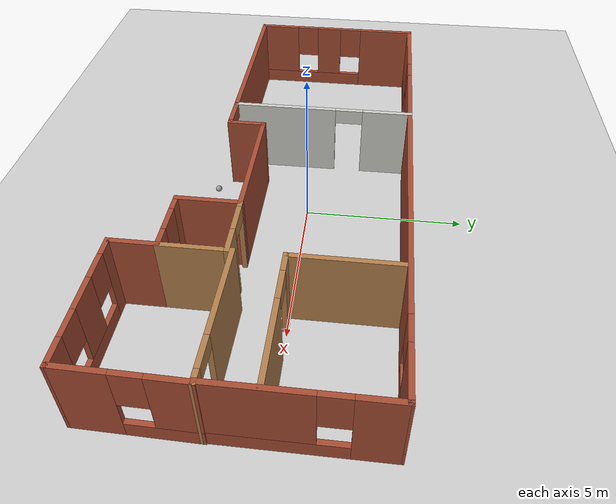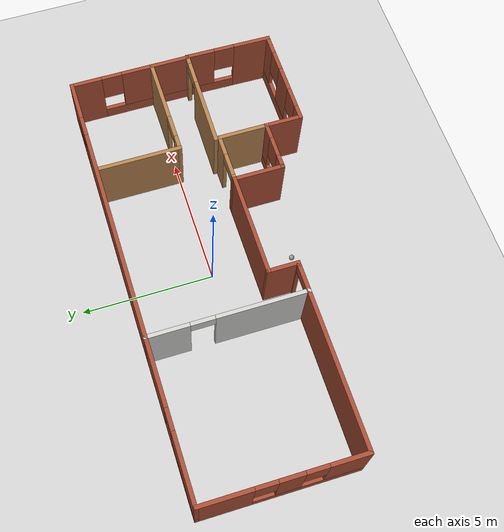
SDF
<sdf version="1.6">
 <world name="default">
  <model name="ground_plane">
   <static>1</static>
   <link name="link">
    <collision name="collision">
     <geometry><plane><normal>0 0 1</normal><size>100 100</size></plane></geometry>
     <surface><friction><ode><mu>100</mu><mu2>50</mu2></ode></friction></surface>
    </collision>
    <visual name="visual">
     <cast_shadows>0</cast_shadows>
     <geometry><plane><normal>0 0 1</normal><size>100 100</size></plane></geometry>
     <material>
      <script><uri>file://media/materials/scripts/gazebo.material</uri><name>Gazebo/Grey</name></script>
     </material>
    </visual>
   </link>
  </model>
  <model name="myhouse">
   <pose>-0.06085 -0.82016 0 0 -0 0</pose>
   <link name="Wall_0">
    <pose>-1.87765 -1.87448 0 0 -0 0</pose>
    <visual name="Wall_0_Visual_0">
     <pose>-0.555853 0 1.25 0 -0 0</pose>
     <geometry><box><size>0.138293 0.15 2.5</size></box></geometry>
     <material>
      <script><uri>file://media/materials/scripts/gazebo.material</uri><name>Gazebo/Bricks</name></script>
      <ambient>1 1 1 1</ambient>
     </material>
     <meta><layer>0</layer></meta>
    </visual>
    <collision name="Wall_0_Collision_0">
     <geometry><box><size>0.138293 0.15 2.5</size></box></geometry>
     <pose>-0.555853 0 1.25 0 -0 0</pose>
    </collision>
    <visual name="Wall_0_Visual_1">
     <pose>0.519147 0 1.25 0 -0 0</pose>
     <geometry><box><size>0.211707 0.15 2.5</size></box></geometry>
     <material>
      <script><uri>file://media/materials/scripts/gazebo.material</uri><name>Gazebo/Bricks</name></script>
      <ambient>1 1 1 1</ambient>
     </material>
     <meta><layer>0</layer></meta>
    </visual>
    <collision name="Wall_0_Collision_1">
     <geometry><box><size>0.211707 0.15 2.5</size></box></geometry>
     <pose>0.519147 0 1.25 0 -0 0</pose>
    </collision>
    <visual name="Wall_0_Visual_2">
     <pose>-0.036707 0 2.25 0 -0 0</pose>
     <geometry><box><size>0.9 0.15 0.5</size></box></geometry>
     <material>
      <script><uri>file://media/materials/scripts/gazebo.material</uri><name>Gazebo/Bricks</name></script>
      <ambient>1 1 1 1</ambient>
     </material>
     <meta><layer>0</layer></meta>
    </visual>
    <collision name="Wall_0_Collision_2">
     <geometry><box><size>0.9 0.15 0.5</size></box></geometry>
     <pose>-0.036707 0 2.25 0 -0 0</pose>
    </collision>
   </link>
   <link name="Wall_1">
    <collision name="Wall_1_Collision">
     <geometry><box><size>1.25 0.15 2.5</size></box></geometry>
     <pose>0 0 1.25 0 -0 0</pose>
    </collision>
    <visual name="Wall_1_Visual">
     <pose>0 0 1.25 0 -0 0</pose>
     <geometry><box><size>1.25 0.15 2.5</size></box></geometry>
     <material>
      <script><uri>file://media/materials/scripts/gazebo.material</uri><name>Gazebo/Bricks</name></script>
      <ambient>1 1 1 1</ambient>
     </material>
     <meta><layer>0</layer></meta>
    </visual>
    <pose>-1.32765 -1.32448 0 0 -0 1.5708</pose>
   </link>
   <link name="Wall_10">
    <pose>8.24939 -2.32652 0 0 -0 1.55439</pose>
    <visual name="Wall_10_Visual_0">
     <pose>-0.982609 0 1.25 0 -0 0</pose>
     <geometry><box><size>1.48115 0.15 2.5</size></box></geometry>
     <material>
      <script><uri>file://media/materials/scripts/gazebo.material</uri><name>Gazebo/Bricks</name></script>
      <ambient>1 1 1 1</ambient>
     </material>
     <meta><layer>0</layer></meta>
    </visual>
    <collision name="Wall_10_Collision_0">
     <geometry><box><size>1.48115 0.15 2.5</size></box></geometry>
     <pose>-0.982609 0 1.25 0 -0 0</pose>
    </collision>
    <visual name="Wall_10_Visual_1">
     <pose>0.740575 0 0.25 0 -0 0</pose>
     <geometry><box><size>1.96522 0.15 0.5</size></box></geometry>
     <material>
      <script><uri>file://media/materials/scripts/gazebo.material</uri><name>Gazebo/Bricks</name></script>
      <ambient>1 1 1 1</ambient>
     </material>
     <meta><layer>0</layer></meta>
    </visual>
    <collision name="Wall_10_Collision_1">
     <geometry><box><size>1.96522 0.15 0.5</size></box></geometry>
     <pose>0.740575 0 0.25 0 -0 0</pose>
    </collision>
    <visual name="Wall_10_Visual_2">
     <pose>1.14057 0 1.5 0 -0 0</pose>
     <geometry><box><size>1.16522 0.15 2</size></box></geometry>
     <material>
      <script><uri>file://media/materials/scripts/gazebo.material</uri><name>Gazebo/Bricks</name></script>
      <ambient>1 1 1 1</ambient>
     </material>
     <meta><layer>0</layer></meta>
    </visual>
    <collision name="Wall_10_Collision_2">
     <geometry><box><size>1.16522 0.15 2</size></box></geometry>
     <pose>1.14057 0 1.5 0 -0 0</pose>
    </collision>
    <visual name="Wall_10_Visual_3">
     <pose>0.157966 0 1.9 0 -0 0</pose>
     <geometry><box><size>0.8 0.15 1.2</size></box></geometry>
     <material>
      <script><uri>file://media/materials/scripts/gazebo.material</uri><name>Gazebo/Bricks</name></script>
      <ambient>1 1 1 1</ambient>
     </material>
     <meta><layer>0</layer></meta>
    </visual>
    <collision name="Wall_10_Collision_3">
     <geometry><box><size>0.8 0.15 1.2</size></box></geometry>
     <pose>0.157966 0 1.9 0 -0 0</pose>
    </collision>
   </link>
   <link name="Wall_12">
    <pose>6.32439 -0.651522 0 0 0 -0.01385</pose>
    <visual name="Wall_12_Visual_0">
     <pose>-0.654543 0 1.25 0 -0 0</pose>
     <geometry><box><size>2.74536 0.15 2.5</size></box></geometry>
     <material>
      <script><uri>file://media/materials/scripts/gazebo.material</uri><name>Gazebo/Wood</name></script>
      <ambient>1 1 1 1</ambient>
     </material>
     <meta><layer>0</layer></meta>
    </visual>
    <collision name="Wall_12_Collision_0">
     <geometry><box><size>2.74536 0.15 2.5</size></box></geometry>
     <pose>-0.654543 0 1.25 0 -0 0</pose>
    </collision>
    <visual name="Wall_12_Visual_1">
     <pose>1.82268 0 1.25 0 -0 0</pose>
     <geometry><box><size>0.409086 0.15 2.5</size></box></geometry>
     <material>
      <script><uri>file://media/materials/scripts/gazebo.material</uri><name>Gazebo/Wood</name></script>
      <ambient>1 1 1 1</ambient>
     </material>
     <meta><layer>0</layer></meta>
    </visual>
    <collision name="Wall_12_Collision_1">
     <geometry><box><size>0.409086 0.15 2.5</size></box></geometry>
     <pose>1.82268 0 1.25 0 -0 0</pose>
    </collision>
    <visual name="Wall_12_Visual_2">
     <pose>1.16814 0 2.25 0 -0 0</pose>
     <geometry><box><size>0.9 0.15 0.5</size></box></geometry>
     <material>
      <script><uri>file://media/materials/scripts/gazebo.material</uri><name>Gazebo/Wood</name></script>
      <ambient>1 1 1 1</ambient>
     </material>
     <meta><layer>0</layer></meta>
    </visual>
    <collision name="Wall_12_Collision_2">
     <geometry><box><size>0.9 0.15 0.5</size></box></geometry>
     <pose>1.16814 0 2.25 0 -0 0</pose>
    </collision>
   </link>
   <link name="Wall_14">
    <pose>-2.42765 1.05052 0 0 -0 1.5708</pose>
    <visual name="Wall_14_Visual_0">
     <pose>-1.27529 0 1.25 0 -0 0</pose>
     <geometry><box><size>3.44943 0.15 2.5</size></box></geometry>
     <material>
      <script><uri>file://media/materials/scripts/gazebo.material</uri><name>Gazebo/CeilingTiled</name></script>
      <ambient>1 1 0 1</ambient>
     </material>
     <meta><layer>0</layer></meta>
    </visual>
    <collision name="Wall_14_Collision_0">
     <geometry><box><size>3.44943 0.15 2.5</size></box></geometry>
     <pose>-1.27529 0 1.25 0 -0 0</pose>
    </collision>
    <visual name="Wall_14_Visual_1">
     <pose>2.17471 0 1.25 0 -0 0</pose>
     <geometry><box><size>1.65057 0.15 2.5</size></box></geometry>
     <material>
      <script><uri>file://media/materials/scripts/gazebo.material</uri><name>Gazebo/CeilingTiled</name></script>
      <ambient>1 1 0 1</ambient>
     </material>
     <meta><layer>0</layer></meta>
    </visual>
    <collision name="Wall_14_Collision_1">
     <geometry><box><size>1.65057 0.15 2.5</size></box></geometry>
     <pose>2.17471 0 1.25 0 -0 0</pose>
    </collision>
    <visual name="Wall_14_Visual_2">
     <pose>0.899425 0 2.25 0 -0 0</pose>
     <geometry><box><size>0.9 0.15 0.5</size></box></geometry>
     <material>
      <script><uri>file://media/materials/scripts/gazebo.material</uri><name>Gazebo/CeilingTiled</name></script>
      <ambient>1 1 0 1</ambient>
     </material>
     <meta><layer>0</layer></meta>
    </visual>
    <collision name="Wall_14_Collision_2">
     <geometry><box><size>0.9 0.15 0.5</size></box></geometry>
     <pose>0.899425 0 2.25 0 -0 0</pose>
    </collision>
   </link>
   <link name="Wall_15">
    <pose>-5.35265 3.97552 0 0 -0 3.14159</pose>
    <visual name="Wall_15_Visual_0">
     <pose>-1.69701 0 1.25 0 -0 0</pose>
     <geometry><box><size>2.60598 0.15 2.5</size></box></geometry>
     <material>
      <script><uri>file://media/materials/scripts/gazebo.material</uri><name>Gazebo/Bricks</name></script>
      <ambient>1 1 1 1</ambient>
     </material>
     <meta><layer>0</layer></meta>
    </visual>
    <collision name="Wall_15_Collision_0">
     <geometry><box><size>2.60598 0.15 2.5</size></box></geometry>
     <pose>-1.69701 0 1.25 0 -0 0</pose>
    </collision>
    <visual name="Wall_15_Visual_1">
     <pose>1.30299 0 0.25 0 -0 0</pose>
     <geometry><box><size>3.39402 0.15 0.5</size></box></geometry>
     <material>
      <script><uri>file://media/materials/scripts/gazebo.material</uri><name>Gazebo/Bricks</name></script>
      <ambient>1 1 1 1</ambient>
     </material>
     <meta><layer>0</layer></meta>
    </visual>
    <collision name="Wall_15_Collision_1">
     <geometry><box><size>3.39402 0.15 0.5</size></box></geometry>
     <pose>1.30299 0 0.25 0 -0 0</pose>
    </collision>
    <visual name="Wall_15_Visual_2">
     <pose>1.70299 0 1.5 0 -0 0</pose>
     <geometry><box><size>2.59402 0.15 2</size></box></geometry>
     <material>
      <script><uri>file://media/materials/scripts/gazebo.material</uri><name>Gazebo/Bricks</name></script>
      <ambient>1 1 1 1</ambient>
     </material>
     <meta><layer>0</layer></meta>
    </visual>
    <collision name="Wall_15_Collision_2">
     <geometry><box><size>2.59402 0.15 2</size></box></geometry>
     <pose>1.70299 0 1.5 0 -0 0</pose>
    </collision>
    <visual name="Wall_15_Visual_3">
     <pose>0.005982 0 1.9 0 -0 0</pose>
     <geometry><box><size>0.8 0.15 1.2</size></box></geometry>
     <material>
      <script><uri>file://media/materials/scripts/gazebo.material</uri><name>Gazebo/Bricks</name></script>
      <ambient>1 1 1 1</ambient>
     </material>
     <meta><layer>0</layer></meta>
    </visual>
    <collision name="Wall_15_Collision_3">
     <geometry><box><size>0.8 0.15 1.2</size></box></geometry>
     <pose>0.005982 0 1.9 0 -0 0</pose>
    </collision>
   </link>
   <link name="Wall_16">
    <pose>-8.27765 1.05052 0 0 0 -1.5708</pose>
    <visual name="Wall_16_Visual_0">
     <pose>-1.99021 0 1.25 0 -0 0</pose>
     <geometry><box><size>2.01957 0.15 2.5</size></box></geometry>
     <material>
      <script><uri>file://media/materials/scripts/gazebo.material</uri><name>Gazebo/Bricks</name></script>
      <ambient>1 1 1 1</ambient>
     </material>
     <meta><layer>0</layer></meta>
    </visual>
    <collision name="Wall_16_Collision_0">
     <geometry><box><size>2.01957 0.15 2.5</size></box></geometry>
     <pose>-1.99021 0 1.25 0 -0 0</pose>
    </collision>
    <visual name="Wall_16_Visual_1">
     <pose>1.00979 0 0.25 0 -0 0</pose>
     <geometry><box><size>3.98043 0.15 0.5</size></box></geometry>
     <material>
      <script><uri>file://media/materials/scripts/gazebo.material</uri><name>Gazebo/Bricks</name></script>
      <ambient>1 1 1 1</ambient>
     </material>
     <meta><layer>0</layer></meta>
    </visual>
    <collision name="Wall_16_Collision_1">
     <geometry><box><size>3.98043 0.15 0.5</size></box></geometry>
     <pose>1.00979 0 0.25 0 -0 0</pose>
    </collision>
    <visual name="Wall_16_Visual_2">
     <pose>0.277751 0 1.5 0 -0 0</pose>
     <geometry><box><size>0.916358 0.15 2</size></box></geometry>
     <material>
      <script><uri>file://media/materials/scripts/gazebo.material</uri><name>Gazebo/Bricks</name></script>
      <ambient>1 1 1 1</ambient>
     </material>
     <meta><layer>0</layer></meta>
    </visual>
    <collision name="Wall_16_Collision_2">
     <geometry><box><size>0.916358 0.15 2</size></box></geometry>
     <pose>0.277751 0 1.5 0 -0 0</pose>
    </collision>
    <visual name="Wall_16_Visual_3">
     <pose>2.26796 0 1.5 0 -0 0</pose>
     <geometry><box><size>1.46407 0.15 2</size></box></geometry>
     <material>
      <script><uri>file://media/materials/scripts/gazebo.material</uri><name>Gazebo/Bricks</name></script>
      <ambient>1 1 1 1</ambient>
     </material>
     <meta><layer>0</layer></meta>
    </visual>
    <collision name="Wall_16_Collision_3">
     <geometry><box><size>1.46407 0.15 2</size></box></geometry>
     <pose>2.26796 0 1.5 0 -0 0</pose>
    </collision>
    <visual name="Wall_16_Visual_4">
     <pose>-0.580428 0 1.9 0 -0 0</pose>
     <geometry><box><size>0.8 0.15 1.2</size></box></geometry>
     <material>
      <script><uri>file://media/materials/scripts/gazebo.material</uri><name>Gazebo/Bricks</name></script>
      <ambient>1 1 1 1</ambient>
     </material>
     <meta><layer>0</layer></meta>
    </visual>
    <collision name="Wall_16_Collision_4">
     <geometry><box><size>0.8 0.15 1.2</size></box></geometry>
     <pose>-0.580428 0 1.9 0 -0 0</pose>
    </collision>
    <visual name="Wall_16_Visual_5">
     <pose>1.13593 0 1.9 0 -0 0</pose>
     <geometry><box><size>0.8 0.15 1.2</size></box></geometry>
     <material>
      <script><uri>file://media/materials/scripts/gazebo.material</uri><name>Gazebo/Bricks</name></script>
      <ambient>1 1 1 1</ambient>
     </material>
     <meta><layer>0</layer></meta>
    </visual>
    <collision name="Wall_16_Collision_5">
     <geometry><box><size>0.8 0.15 1.2</size></box></geometry>
     <pose>1.13593 0 1.9 0 -0 0</pose>
    </collision>
   </link>
   <link name="Wall_17">
    <collision name="Wall_17_Collision">
     <geometry><box><size>6 0.15 2.5</size></box></geometry>
     <pose>0 0 1.25 0 -0 0</pose>
    </collision>
    <visual name="Wall_17_Visual">
     <pose>0 0 1.25 0 -0 0</pose>
     <geometry><box><size>6 0.15 2.5</size></box></geometry>
     <material>
      <script><uri>file://media/materials/scripts/gazebo.material</uri><name>Gazebo/Bricks</name></script>
      <ambient>1 1 1 1</ambient>
     </material>
     <meta><layer>0</layer></meta>
    </visual>
    <pose>-5.35265 -1.87448 0 0 -0 0</pose>
   </link>
   <link name="Wall_19">
    <pose>2.91087 3.962 0 0 0 -0.002532</pose>
    <visual name="Wall_19_Visual_0">
     <pose>-1.19531 0 1.25 0 -0 0</pose>
     <geometry><box><size>8.43646 0.15 2.5</size></box></geometry>
     <material>
      <script><uri>file://media/materials/scripts/gazebo.material</uri><name>Gazebo/Bricks</name></script>
      <ambient>1 1 1 1</ambient>
     </material>
     <meta><layer>0</layer></meta>
    </visual>
    <collision name="Wall_19_Collision_0">
     <geometry><box><size>8.43646 0.15 2.5</size></box></geometry>
     <pose>-1.19531 0 1.25 0 -0 0</pose>
    </collision>
    <visual name="Wall_19_Visual_1">
     <pose>4.21823 0 0.25 0 -0 0</pose>
     <geometry><box><size>2.39061 0.15 0.5</size></box></geometry>
     <material>
      <script><uri>file://media/materials/scripts/gazebo.material</uri><name>Gazebo/Bricks</name></script>
      <ambient>1 1 1 1</ambient>
     </material>
     <meta><layer>0</layer></meta>
    </visual>
    <collision name="Wall_19_Collision_1">
     <geometry><box><size>2.39061 0.15 0.5</size></box></geometry>
     <pose>4.21823 0 0.25 0 -0 0</pose>
    </collision>
    <visual name="Wall_19_Visual_2">
     <pose>4.61823 0 1.5 0 -0 0</pose>
     <geometry><box><size>1.59061 0.15 2</size></box></geometry>
     <material>
      <script><uri>file://media/materials/scripts/gazebo.material</uri><name>Gazebo/Bricks</name></script>
      <ambient>1 1 1 1</ambient>
     </material>
     <meta><layer>0</layer></meta>
    </visual>
    <collision name="Wall_19_Collision_2">
     <geometry><box><size>1.59061 0.15 2</size></box></geometry>
     <pose>4.61823 0 1.5 0 -0 0</pose>
    </collision>
    <visual name="Wall_19_Visual_3">
     <pose>3.42292 0 1.9 0 -0 0</pose>
     <geometry><box><size>0.8 0.15 1.2</size></box></geometry>
     <material>
      <script><uri>file://media/materials/scripts/gazebo.material</uri><name>Gazebo/Bricks</name></script>
      <ambient>1 1 1 1</ambient>
     </material>
     <meta><layer>0</layer></meta>
    </visual>
    <collision name="Wall_19_Collision_3">
     <geometry><box><size>0.8 0.15 1.2</size></box></geometry>
     <pose>3.42292 0 1.9 0 -0 0</pose>
    </collision>
   </link>
   <link name="Wall_2">
    <collision name="Wall_2_Collision">
     <geometry><box><size>4 0.15 2.5</size></box></geometry>
     <pose>0 0 1.25 0 -0 0</pose>
    </collision>
    <visual name="Wall_2_Visual">
     <pose>0 0 1.25 0 -0 0</pose>
     <geometry><box><size>4 0.15 2.5</size></box></geometry>
     <material>
      <script><uri>file://media/materials/scripts/gazebo.material</uri><name>Gazebo/Bricks</name></script>
      <ambient>1 1 1 1</ambient>
     </material>
     <meta><layer>0</layer></meta>
    </visual>
    <pose>0.597353 -0.774485 0 0 -0 0</pose>
   </link>
   <link name="Wall_21">
    <pose>8.24939 1.64848 0 0 0 -1.5708</pose>
    <visual name="Wall_21_Visual_0">
     <pose>-1.75419 0 1.25 0 -0 0</pose>
     <geometry><box><size>1.24163 0.15 2.5</size></box></geometry>
     <material>
      <script><uri>file://media/materials/scripts/gazebo.material</uri><name>Gazebo/Bricks</name></script>
      <ambient>1 1 1 1</ambient>
     </material>
     <meta><layer>0</layer></meta>
    </visual>
    <collision name="Wall_21_Collision_0">
     <geometry><box><size>1.24163 0.15 2.5</size></box></geometry>
     <pose>-1.75419 0 1.25 0 -0 0</pose>
    </collision>
    <visual name="Wall_21_Visual_1">
     <pose>0.620814 0 0.25 0 -0 0</pose>
     <geometry><box><size>3.50837 0.15 0.5</size></box></geometry>
     <material>
      <script><uri>file://media/materials/scripts/gazebo.material</uri><name>Gazebo/Bricks</name></script>
      <ambient>1 1 1 1</ambient>
     </material>
     <meta><layer>0</layer></meta>
    </visual>
    <collision name="Wall_21_Collision_1">
     <geometry><box><size>3.50837 0.15 0.5</size></box></geometry>
     <pose>0.620814 0 0.25 0 -0 0</pose>
    </collision>
    <visual name="Wall_21_Visual_2">
     <pose>1.02081 0 1.5 0 -0 0</pose>
     <geometry><box><size>2.70837 0.15 2</size></box></geometry>
     <material>
      <script><uri>file://media/materials/scripts/gazebo.material</uri><name>Gazebo/Bricks</name></script>
      <ambient>1 1 1 1</ambient>
     </material>
     <meta><layer>0</layer></meta>
    </visual>
    <collision name="Wall_21_Collision_2">
     <geometry><box><size>2.70837 0.15 2</size></box></geometry>
     <pose>1.02081 0 1.5 0 -0 0</pose>
    </collision>
    <visual name="Wall_21_Visual_3">
     <pose>-0.733373 0 1.9 0 -0 0</pose>
     <geometry><box><size>0.8 0.15 1.2</size></box></geometry>
     <material>
      <script><uri>file://media/materials/scripts/gazebo.material</uri><name>Gazebo/Bricks</name></script>
      <ambient>1 1 1 1</ambient>
     </material>
     <meta><layer>0</layer></meta>
    </visual>
    <collision name="Wall_21_Collision_3">
     <geometry><box><size>0.8 0.15 1.2</size></box></geometry>
     <pose>-0.733373 0 1.9 0 -0 0</pose>
    </collision>
   </link>
   <link name="Wall_23">
    <pose>6.30421 0.772765 0 0 -0 3.14159</pose>
    <visual name="Wall_23_Visual_0">
     <pose>-0.757202 0 1.25 0 -0 0</pose>
     <geometry><box><size>2.4856 0.15 2.5</size></box></geometry>
     <material>
      <script><uri>file://media/materials/scripts/gazebo.material</uri><name>Gazebo/Wood</name></script>
      <ambient>1 1 1 1</ambient>
     </material>
     <meta><layer>0</layer></meta>
    </visual>
    <collision name="Wall_23_Collision_0">
     <geometry><box><size>2.4856 0.15 2.5</size></box></geometry>
     <pose>-0.757202 0 1.25 0 -0 0</pose>
    </collision>
    <visual name="Wall_23_Visual_1">
     <pose>1.6928 0 1.25 0 -0 0</pose>
     <geometry><box><size>0.614403 0.15 2.5</size></box></geometry>
     <material>
      <script><uri>file://media/materials/scripts/gazebo.material</uri><name>Gazebo/Wood</name></script>
      <ambient>1 1 1 1</ambient>
     </material>
     <meta><layer>0</layer></meta>
    </visual>
    <collision name="Wall_23_Collision_1">
     <geometry><box><size>0.614403 0.15 2.5</size></box></geometry>
     <pose>1.6928 0 1.25 0 -0 0</pose>
    </collision>
    <visual name="Wall_23_Visual_2">
     <pose>0.935597 0 2.25 0 -0 0</pose>
     <geometry><box><size>0.9 0.15 0.5</size></box></geometry>
     <material>
      <script><uri>file://media/materials/scripts/gazebo.material</uri><name>Gazebo/Wood</name></script>
      <ambient>1 1 1 1</ambient>
     </material>
     <meta><layer>0</layer></meta>
    </visual>
    <collision name="Wall_23_Collision_2">
     <geometry><box><size>0.9 0.15 0.5</size></box></geometry>
     <pose>0.935597 0 2.25 0 -0 0</pose>
    </collision>
   </link>
   <link name="Wall_24">
    <collision name="Wall_24_Collision">
     <geometry><box><size>3.25 0.15 2.5</size></box></geometry>
     <pose>0 0 1.25 0 -0 0</pose>
    </collision>
    <visual name="Wall_24_Visual">
     <pose>0 0 1.25 0 -0 0</pose>
     <geometry><box><size>3.25 0.15 2.5</size></box></geometry>
     <material>
      <script><uri>file://media/materials/scripts/gazebo.material</uri><name>Gazebo/Wood</name></script>
      <ambient>0.921569 0.807843 0.615686 1</ambient>
     </material>
     <meta><layer>0</layer></meta>
    </visual>
    <pose>4.37921 2.32276 0 0 -0 1.5708</pose>
   </link>
   <link name="Wall_3">
    <collision name="Wall_3_Collision">
     <geometry><box><size>2 0.15 2.5</size></box></geometry>
     <pose>0 0 1.25 0 -0 0</pose>
    </collision>
    <visual name="Wall_3_Visual">
     <pose>0 0 1.25 0 -0 0</pose>
     <geometry><box><size>2 0.15 2.5</size></box></geometry>
     <material>
      <script><uri>file://media/materials/scripts/gazebo.material</uri><name>Gazebo/Bricks</name></script>
      <ambient>1 1 1 1</ambient>
     </material>
     <meta><layer>0</layer></meta>
    </visual>
    <pose>2.52235 -1.69948 0 0 0 -1.5708</pose>
   </link>
   <link name="Wall_4">
    <pose>3.44735 -2.62448 0 0 -0 0</pose>
    <visual name="Wall_4_Visual_0">
     <pose>-0.723076 0 1.25 0 -0 0</pose>
     <geometry><box><size>0.553849 0.15 2.5</size></box></geometry>
     <material>
      <script><uri>file://media/materials/scripts/gazebo.material</uri><name>Gazebo/Bricks</name></script>
      <ambient>1 1 1 1</ambient>
     </material>
     <meta><layer>0</layer></meta>
    </visual>
    <collision name="Wall_4_Collision_0">
     <geometry><box><size>0.553849 0.15 2.5</size></box></geometry>
     <pose>-0.723076 0 1.25 0 -0 0</pose>
    </collision>
    <visual name="Wall_4_Visual_1">
     <pose>0.276924 0 0.25 0 -0 0</pose>
     <geometry><box><size>1.44615 0.15 0.5</size></box></geometry>
     <material>
      <script><uri>file://media/materials/scripts/gazebo.material</uri><name>Gazebo/Bricks</name></script>
      <ambient>1 1 1 1</ambient>
     </material>
     <meta><layer>0</layer></meta>
    </visual>
    <collision name="Wall_4_Collision_1">
     <geometry><box><size>1.44615 0.15 0.5</size></box></geometry>
     <pose>0.276924 0 0.25 0 -0 0</pose>
    </collision>
    <visual name="Wall_4_Visual_2">
     <pose>0.676924 0 1.5 0 -0 0</pose>
     <geometry><box><size>0.646151 0.15 2</size></box></geometry>
     <material>
      <script><uri>file://media/materials/scripts/gazebo.material</uri><name>Gazebo/Bricks</name></script>
      <ambient>1 1 1 1</ambient>
     </material>
     <meta><layer>0</layer></meta>
    </visual>
    <collision name="Wall_4_Collision_2">
     <geometry><box><size>0.646151 0.15 2</size></box></geometry>
     <pose>0.676924 0 1.5 0 -0 0</pose>
    </collision>
    <visual name="Wall_4_Visual_3">
     <pose>-0.046151 0 1.9 0 -0 0</pose>
     <geometry><box><size>0.8 0.15 1.2</size></box></geometry>
     <material>
      <script><uri>file://media/materials/scripts/gazebo.material</uri><name>Gazebo/Bricks</name></script>
      <ambient>1 1 1 1</ambient>
     </material>
     <meta><layer>0</layer></meta>
    </visual>
    <collision name="Wall_4_Collision_3">
     <geometry><box><size>0.8 0.15 1.2</size></box></geometry>
     <pose>-0.046151 0 1.9 0 -0 0</pose>
    </collision>
   </link>
   <link name="Wall_5">
    <collision name="Wall_5_Collision">
     <geometry><box><size>2 0.15 2.5</size></box></geometry>
     <pose>0 0 1.25 0 -0 0</pose>
    </collision>
    <visual name="Wall_5_Visual">
     <pose>0 0 1.25 0 -0 0</pose>
     <geometry><box><size>2 0.15 2.5</size></box></geometry>
     <material>
      <script><uri>file://media/materials/scripts/gazebo.material</uri><name>Gazebo/Wood</name></script>
      <ambient>1 1 1 1</ambient>
     </material>
     <meta><layer>0</layer></meta>
    </visual>
    <pose>4.37235 -1.69948 0 0 -0 1.5708</pose>
   </link>
   <link name="Wall_6">
    <pose>3.44735 -0.774485 0 0 -0 3.14159</pose>
    <visual name="Wall_6_Visual_0">
     <pose>-0.577975 0 1.25 0 -0 0</pose>
     <geometry><box><size>0.84405 0.15 2.5</size></box></geometry>
     <material>
      <script><uri>file://media/materials/scripts/gazebo.material</uri><name>Gazebo/Wood</name></script>
      <ambient>0.435294 0.796078 0.67451 1</ambient>
     </material>
     <meta><layer>0</layer></meta>
    </visual>
    <collision name="Wall_6_Collision_0">
     <geometry><box><size>0.84405 0.15 2.5</size></box></geometry>
     <pose>-0.577975 0 1.25 0 -0 0</pose>
    </collision>
    <visual name="Wall_6_Visual_1">
     <pose>0.872025 0 1.25 0 -0 0</pose>
     <geometry><box><size>0.25595 0.15 2.5</size></box></geometry>
     <material>
      <script><uri>file://media/materials/scripts/gazebo.material</uri><name>Gazebo/Wood</name></script>
      <ambient>0.435294 0.796078 0.67451 1</ambient>
     </material>
     <meta><layer>0</layer></meta>
    </visual>
    <collision name="Wall_6_Collision_1">
     <geometry><box><size>0.25595 0.15 2.5</size></box></geometry>
     <pose>0.872025 0 1.25 0 -0 0</pose>
    </collision>
    <visual name="Wall_6_Visual_2">
     <pose>0.29405 0 2.25 0 -0 0</pose>
     <geometry><box><size>0.9 0.15 0.5</size></box></geometry>
     <material>
      <script><uri>file://media/materials/scripts/gazebo.material</uri><name>Gazebo/Wood</name></script>
      <ambient>0.435294 0.796078 0.67451 1</ambient>
     </material>
     <meta><layer>0</layer></meta>
    </visual>
    <collision name="Wall_6_Collision_2">
     <geometry><box><size>0.9 0.15 0.5</size></box></geometry>
     <pose>0.29405 0 2.25 0 -0 0</pose>
    </collision>
   </link>
   <link name="Wall_8">
    <collision name="Wall_8_Collision">
     <geometry><box><size>1.5 0.15 2.5</size></box></geometry>
     <pose>0 0 1.25 0 -0 0</pose>
    </collision>
    <visual name="Wall_8_Visual">
     <pose>0 0 1.25 0 -0 0</pose>
     <geometry><box><size>1.5 0.15 2.5</size></box></geometry>
     <material>
      <script><uri>file://media/materials/scripts/gazebo.material</uri><name>Gazebo/Bricks</name></script>
      <ambient>1 1 1 1</ambient>
     </material>
     <meta><layer>0</layer></meta>
    </visual>
    <pose>4.37235 -3.29948 0 0 0 -1.5708</pose>
   </link>
   <link name="Wall_9">
    <pose>6.29735 -3.97449 0 0 -0 0</pose>
    <visual name="Wall_9_Visual_0">
     <pose>-1.70763 0 1.25 0 -0 0</pose>
     <geometry><box><size>0.584738 0.15 2.5</size></box></geometry>
     <material>
      <script><uri>file://media/materials/scripts/gazebo.material</uri><name>Gazebo/Bricks</name></script>
      <ambient>1 1 1 1</ambient>
     </material>
     <meta><layer>0</layer></meta>
    </visual>
    <collision name="Wall_9_Collision_0">
     <geometry><box><size>0.584738 0.15 2.5</size></box></geometry>
     <pose>-1.70763 0 1.25 0 -0 0</pose>
    </collision>
    <visual name="Wall_9_Visual_1">
     <pose>0.292369 0 0.25 0 -0 0</pose>
     <geometry><box><size>3.41526 0.15 0.5</size></box></geometry>
     <material>
      <script><uri>file://media/materials/scripts/gazebo.material</uri><name>Gazebo/Bricks</name></script>
      <ambient>1 1 1 1</ambient>
     </material>
     <meta><layer>0</layer></meta>
    </visual>
    <collision name="Wall_9_Collision_1">
     <geometry><box><size>3.41526 0.15 0.5</size></box></geometry>
     <pose>0.292369 0 0.25 0 -0 0</pose>
    </collision>
    <visual name="Wall_9_Visual_2">
     <pose>-0.115707 0 1.5 0 -0 0</pose>
     <geometry><box><size>0.999111 0.15 2</size></box></geometry>
     <material>
      <script><uri>file://media/materials/scripts/gazebo.material</uri><name>Gazebo/Bricks</name></script>
      <ambient>1 1 1 1</ambient>
     </material>
     <meta><layer>0</layer></meta>
    </visual>
    <collision name="Wall_9_Collision_2">
     <geometry><box><size>0.999111 0.15 2</size></box></geometry>
     <pose>-0.115707 0 1.5 0 -0 0</pose>
    </collision>
    <visual name="Wall_9_Visual_3">
     <pose>1.59192 0 1.5 0 -0 0</pose>
     <geometry><box><size>0.816151 0.15 2</size></box></geometry>
     <material>
      <script><uri>file://media/materials/scripts/gazebo.material</uri><name>Gazebo/Bricks</name></script>
      <ambient>1 1 1 1</ambient>
     </material>
     <meta><layer>0</layer></meta>
    </visual>
    <collision name="Wall_9_Collision_3">
     <geometry><box><size>0.816151 0.15 2</size></box></geometry>
     <pose>1.59192 0 1.5 0 -0 0</pose>
    </collision>
    <visual name="Wall_9_Visual_4">
     <pose>-1.01526 0 1.9 0 -0 0</pose>
     <geometry><box><size>0.8 0.15 1.2</size></box></geometry>
     <material>
      <script><uri>file://media/materials/scripts/gazebo.material</uri><name>Gazebo/Bricks</name></script>
      <ambient>1 1 1 1</ambient>
     </material>
     <meta><layer>0</layer></meta>
    </visual>
    <collision name="Wall_9_Collision_4">
     <geometry><box><size>0.8 0.15 1.2</size></box></geometry>
     <pose>-1.01526 0 1.9 0 -0 0</pose>
    </collision>
    <visual name="Wall_9_Visual_5">
     <pose>0.783849 0 1.9 0 -0 0</pose>
     <geometry><box><size>0.8 0.15 1.2</size></box></geometry>
     <material>
      <script><uri>file://media/materials/scripts/gazebo.material</uri><name>Gazebo/Bricks</name></script>
      <ambient>1 1 1 1</ambient>
     </material>
     <meta><layer>0</layer></meta>
    </visual>
    <collision name="Wall_9_Collision_5">
     <geometry><box><size>0.8 0.15 1.2</size></box></geometry>
     <pose>0.783849 0 1.9 0 -0 0</pose>
    </collision>
   </link>
   <static>1</static>
  </model>
  <model name="my_ball">
   <link name="link_0">
    <inertial>
     <mass>1</mass>
     <inertia><ixx>0.1</ixx><ixy>0</ixy><ixz>0</ixz><iyy>0.1</iyy><iyz>0</iyz><izz>0.1</izz></inertia>
    </inertial>
    <visual name="visual">
     <geometry><sphere><radius>0.1</radius></sphere></geometry>
     <material>
      <lighting>1</lighting>
      <script><uri>file://media/materials/scripts/gazebo.material</uri><name>Gazebo/Grey</name></script>
      <shader type="pixel"><normal_map>__default__</normal_map></shader>
      <ambient>1 1 1 1</ambient>
      <diffuse>1 1 1 1</diffuse>
      <specular>1 1 1 1</specular>
      <emissive>1 1 1 1</emissive>
     </material>
    </visual>
    <collision name="collision">
     <geometry><sphere><radius>0.1</radius></sphere></geometry>
     <surface>
      <friction>
       <ode><mu>1</mu><mu2>1</mu2><fdir1>0 0 0</fdir1><slip1>0</slip1><slip2>0</slip2></ode>
       <torsional>
        <coefficient>1</coefficient>
        <patch_radius>0</patch_radius>
        <surface_radius>0</surface_radius>
        <use_patch_radius>1</use_patch_radius>
        <ode><slip>0</slip></ode>
       </torsional>
      </friction>
      <bounce><restitution_coefficient>0</restitution_coefficient><threshold>1e+06</threshold></bounce>
      <contact>
       <collide_without_contact>0</collide_without_contact>
       <collide_without_contact_bitmask>1</collide_without_contact_bitmask>
       <collide_bitmask>1</collide_bitmask>
       <ode>
        <soft_cfm>0</soft_cfm>
        <soft_erp>0.2</soft_erp>
        <kp>1e+13</kp>
        <kd>1</kd>
        <max_vel>0.01</max_vel>
        <min_depth>0</min_depth>
       </ode>
       <bullet>
        <split_impulse>1</split_impulse>
        <split_impulse_penetration_threshold>-0.01</split_impulse_penetration_threshold>
        <soft_cfm>0</soft_cfm>
        <soft_erp>0.2</soft_erp>
        <kp>1e+13</kp>
        <kd>1</kd>
       </bullet>
      </contact>
     </surface>
    </collision>
   </link>
   <static>0</static>
   <pose>-0.315899 -3.00684 0.5 0 -0 0</pose>
  </model>
 </world>
</sdf>
